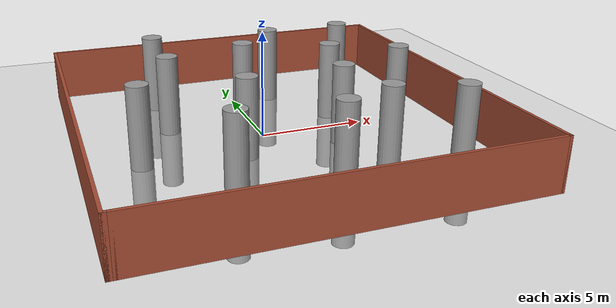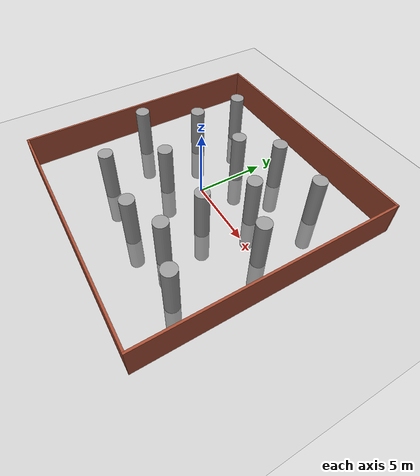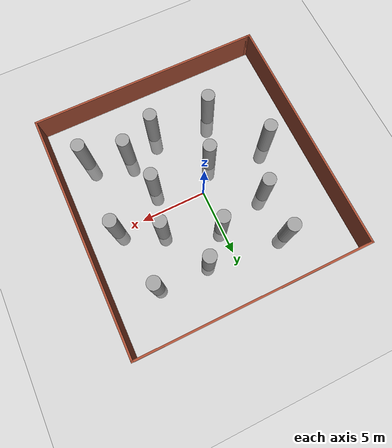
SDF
<sdf version="1.7">
 <world name="default">
  <light name="sun" type="directional">
   <pose>0 0 10 0 -0 0</pose>
   <diffuse>0.8 0.8 0.8 1</diffuse>
   <specular>0.2 0.2 0.2 1</specular>
   <attenuation>
    <range>1000</range>
    <constant>0.9</constant>
    <linear>0.01</linear>
    <quadratic>0.001</quadratic>
   </attenuation>
   <direction>-0.5 0.1 -0.9</direction>
   <spot><inner_angle>0</inner_angle><outer_angle>0</outer_angle><falloff>0</falloff></spot>
  </light>
  <model name="ground_plane">
   <static>1</static>
   <link name="link">
    <collision name="collision">
     <geometry><plane><normal>0 0 1</normal><size>100 100</size></plane></geometry>
     <surface>
      <contact><collide_bitmask>65535</collide_bitmask></contact>
      <friction><ode><mu>100</mu><mu2>50</mu2></ode></friction>
     </surface>
    </collision>
    <visual name="visual">
     <cast_shadows>0</cast_shadows>
     <geometry><plane><normal>0 0 1</normal><size>100 100</size></plane></geometry>
     <material>
      <script><uri>file://media/materials/scripts/gazebo.material</uri><name>Gazebo/Grey</name></script>
     </material>
    </visual>
   </link>
  </model>
  <gravity>0 0 -9.8</gravity>
  <magnetic_field>6e-06 2.3e-05 -4.2e-05</magnetic_field>
  <atmosphere type="adiabatic"/>
  <physics type="ode">
   <max_step_size>0.001</max_step_size>
   <real_time_factor>1</real_time_factor>
   <real_time_update_rate>1000</real_time_update_rate>
  </physics>
  <scene><ambient>0.4 0.4 0.4 1</ambient><background>0.7 0.7 0.7 1</background><shadows>1</shadows></scene>
  <spherical_coordinates>
   <surface_model>EARTH_WGS84</surface_model>
   <latitude_deg>0</latitude_deg>
   <longitude_deg>0</longitude_deg>
   <elevation>0</elevation>
   <heading_deg>0</heading_deg>
  </spherical_coordinates>
  <model name="wall">
   <pose>0.32648 -0.43812 0 0 -0 0</pose>
   <link name="Wall_0">
    <collision name="Wall_0_Collision">
     <geometry><box><size>17.75 0.15 2.5</size></box></geometry>
     <pose>0 0 1.25 0 -0 0</pose>
    </collision>
    <visual name="Wall_0_Visual">
     <pose>0 0 1.25 0 -0 0</pose>
     <geometry><box><size>17.75 0.15 2.5</size></box></geometry>
     <material>
      <script><uri>file://media/materials/scripts/gazebo.material</uri><name>Gazebo/Bricks</name></script>
      <ambient>1 1 1 1</ambient>
     </material>
     <meta><layer>0</layer></meta>
    </visual>
    <pose>0.125 -9.175 0 0 -0 0</pose>
   </link>
   <link name="Wall_1">
    <collision name="Wall_1_Collision">
     <geometry><box><size>18.5 0.15 2.5</size></box></geometry>
     <pose>0 0 1.25 0 -0 0</pose>
    </collision>
    <visual name="Wall_1_Visual">
     <pose>0 0 1.25 0 -0 0</pose>
     <geometry><box><size>18.5 0.15 2.5</size></box></geometry>
     <material>
      <script><uri>file://media/materials/scripts/gazebo.material</uri><name>Gazebo/Bricks</name></script>
      <ambient>1 1 1 1</ambient>
     </material>
     <meta><layer>0</layer></meta>
    </visual>
    <pose>8.925 -0 0 0 -0 1.5708</pose>
   </link>
   <link name="Wall_4">
    <collision name="Wall_4_Collision">
     <geometry><box><size>18 0.15 2.5</size></box></geometry>
     <pose>0 0 1.25 0 -0 0</pose>
    </collision>
    <visual name="Wall_4_Visual">
     <pose>0 0 1.25 0 -0 0</pose>
     <geometry><box><size>18 0.15 2.5</size></box></geometry>
     <material>
      <script><uri>file://media/materials/scripts/gazebo.material</uri><name>Gazebo/Bricks</name></script>
      <ambient>1 1 1 1</ambient>
     </material>
     <meta><layer>0</layer></meta>
    </visual>
    <pose>0 9.175 0 0 -0 3.14159</pose>
   </link>
   <link name="Wall_5">
    <collision name="Wall_5_Collision">
     <geometry><box><size>18.5 0.15 2.5</size></box></geometry>
     <pose>0 0 1.25 0 -0 0</pose>
    </collision>
    <visual name="Wall_5_Visual">
     <pose>0 0 1.25 0 -0 0</pose>
     <geometry><box><size>18.5 0.15 2.5</size></box></geometry>
     <material>
      <script><uri>file://media/materials/scripts/gazebo.material</uri><name>Gazebo/Bricks</name></script>
      <ambient>1 1 1 1</ambient>
     </material>
     <meta><layer>0</layer></meta>
    </visual>
    <pose>-8.925 -0 0 0 -0 -1.5708</pose>
   </link>
   <link name="Wall_7">
    <collision name="Wall_7_Collision">
     <geometry><box><size>0.4 0.15 2.5</size></box></geometry>
     <pose>0 0 1.25 0 -0 0</pose>
    </collision>
    <visual name="Wall_7_Visual">
     <pose>0 0 1.25 0 -0 0</pose>
     <geometry><box><size>0.4 0.15 2.5</size></box></geometry>
     <material>
      <script><uri>file://media/materials/scripts/gazebo.material</uri><name>Gazebo/Bricks</name></script>
      <ambient>1 1 1 1</ambient>
     </material>
     <meta><layer>0</layer></meta>
    </visual>
    <pose>-8.8 -9.175 0 0 -0 0</pose>
   </link>
   <static>1</static>
  </model>
  <model name="obstacle哦">
   <link name="link_0">
    <inertial>
     <mass>6.48915</mass>
     <inertia><ixx>23.1765</ixx><ixy>0</ixy><ixz>0</ixz><iyy>23.1765</iyy><iyz>0</iyz><izz>0.811144</izz></inertia>
    </inertial>
    <pose>-1.40053 -2.00877 0.5 0 -0 0</pose>
    <visual name="visual">
     <geometry><cylinder><radius>0.5</radius><length>6.48914</length></cylinder></geometry>
     <material>
      <lighting>1</lighting>
      <script><uri>file://media/materials/scripts/gazebo.material</uri><name>Gazebo/Grey</name></script>
      <shader type="pixel"/>
     </material>
    </visual>
    <collision name="collision">
     <geometry><cylinder><radius>0.5</radius><length>6.48914</length></cylinder></geometry>
     <surface>
      <friction>
       <ode><mu>1</mu><mu2>1</mu2><fdir1>0 0 0</fdir1><slip1>0</slip1><slip2>0</slip2></ode>
       <torsional>
        <coefficient>1</coefficient>
        <patch_radius>0</patch_radius>
        <surface_radius>0</surface_radius>
        <use_patch_radius>1</use_patch_radius>
        <ode><slip>0</slip></ode>
       </torsional>
      </friction>
      <bounce><restitution_coefficient>0</restitution_coefficient><threshold>1e+06</threshold></bounce>
      <contact>
       <collide_without_contact>0</collide_without_contact>
       <collide_without_contact_bitmask>1</collide_without_contact_bitmask>
       <collide_bitmask>1</collide_bitmask>
       <ode>
        <soft_cfm>0</soft_cfm>
        <soft_erp>0.2</soft_erp>
        <kp>1e+13</kp>
        <kd>1</kd>
        <max_vel>0.01</max_vel>
        <min_depth>0</min_depth>
       </ode>
       <bullet>
        <split_impulse>1</split_impulse>
        <split_impulse_penetration_threshold>-0.01</split_impulse_penetration_threshold>
        <soft_cfm>0</soft_cfm>
        <soft_erp>0.2</soft_erp>
        <kp>1e+13</kp>
        <kd>1</kd>
       </bullet>
      </contact>
     </surface>
    </collision>
   </link>
   <link name="link_0_clone">
    <inertial>
     <mass>6.48915</mass>
     <inertia><ixx>23.1765</ixx><ixy>0</ixy><ixz>0</ixz><iyy>23.1765</iyy><iyz>0</iyz><izz>0.811144</izz></inertia>
    </inertial>
    <pose>3.23362 -1.83558 0.5 0 -0 0</pose>
    <visual name="visual">
     <geometry><cylinder><radius>0.5</radius><length>6.48914</length></cylinder></geometry>
     <material>
      <lighting>1</lighting>
      <script><uri>file://media/materials/scripts/gazebo.material</uri><name>Gazebo/Grey</name></script>
      <shader type="pixel"/>
     </material>
    </visual>
    <collision name="collision">
     <geometry><cylinder><radius>0.5</radius><length>6.48914</length></cylinder></geometry>
     <surface>
      <friction>
       <ode><mu>1</mu><mu2>1</mu2><fdir1>0 0 0</fdir1><slip1>0</slip1><slip2>0</slip2></ode>
       <torsional>
        <coefficient>1</coefficient>
        <patch_radius>0</patch_radius>
        <surface_radius>0</surface_radius>
        <use_patch_radius>1</use_patch_radius>
        <ode><slip>0</slip></ode>
       </torsional>
      </friction>
      <bounce><restitution_coefficient>0</restitution_coefficient><threshold>1e+06</threshold></bounce>
      <contact>
       <collide_without_contact>0</collide_without_contact>
       <collide_without_contact_bitmask>1</collide_without_contact_bitmask>
       <collide_bitmask>1</collide_bitmask>
       <ode>
        <soft_cfm>0</soft_cfm>
        <soft_erp>0.2</soft_erp>
        <kp>1e+13</kp>
        <kd>1</kd>
        <max_vel>0.01</max_vel>
        <min_depth>0</min_depth>
       </ode>
       <bullet>
        <split_impulse>1</split_impulse>
        <split_impulse_penetration_threshold>-0.01</split_impulse_penetration_threshold>
        <soft_cfm>0</soft_cfm>
        <soft_erp>0.2</soft_erp>
        <kp>1e+13</kp>
        <kd>1</kd>
       </bullet>
      </contact>
     </surface>
    </collision>
   </link>
   <link name="link_0_clone_0">
    <inertial>
     <mass>6.48915</mass>
     <inertia><ixx>23.1765</ixx><ixy>0</ixy><ixz>0</ixz><iyy>23.1765</iyy><iyz>0</iyz><izz>0.811144</izz></inertia>
    </inertial>
    <pose>-3 -5.59698 0.5 0 -0 0</pose>
    <visual name="visual">
     <geometry><cylinder><radius>0.5</radius><length>6.48914</length></cylinder></geometry>
     <material>
      <lighting>1</lighting>
      <script><uri>file://media/materials/scripts/gazebo.material</uri><name>Gazebo/Grey</name></script>
      <shader type="pixel"/>
     </material>
    </visual>
    <collision name="collision">
     <geometry><cylinder><radius>0.5</radius><length>6.48914</length></cylinder></geometry>
     <surface>
      <friction>
       <ode><mu>1</mu><mu2>1</mu2><fdir1>0 0 0</fdir1><slip1>0</slip1><slip2>0</slip2></ode>
       <torsional>
        <coefficient>1</coefficient>
        <patch_radius>0</patch_radius>
        <surface_radius>0</surface_radius>
        <use_patch_radius>1</use_patch_radius>
        <ode><slip>0</slip></ode>
       </torsional>
      </friction>
      <bounce><restitution_coefficient>0</restitution_coefficient><threshold>1e+06</threshold></bounce>
      <contact>
       <collide_without_contact>0</collide_without_contact>
       <collide_without_contact_bitmask>1</collide_without_contact_bitmask>
       <collide_bitmask>1</collide_bitmask>
       <ode>
        <soft_cfm>0</soft_cfm>
        <soft_erp>0.2</soft_erp>
        <kp>1e+13</kp>
        <kd>1</kd>
        <max_vel>0.01</max_vel>
        <min_depth>0</min_depth>
       </ode>
       <bullet>
        <split_impulse>1</split_impulse>
        <split_impulse_penetration_threshold>-0.01</split_impulse_penetration_threshold>
        <soft_cfm>0</soft_cfm>
        <soft_erp>0.2</soft_erp>
        <kp>1e+13</kp>
        <kd>1</kd>
       </bullet>
      </contact>
     </surface>
    </collision>
   </link>
   <link name="link_0_clone_1">
    <inertial>
     <mass>6.48915</mass>
     <inertia><ixx>23.1765</ixx><ixy>0</ixy><ixz>0</ixz><iyy>23.1765</iyy><iyz>0</iyz><izz>0.811144</izz></inertia>
    </inertial>
    <pose>-6 -1.53349 0.5 0 -0 0</pose>
    <visual name="visual">
     <geometry><cylinder><radius>0.5</radius><length>6.48914</length></cylinder></geometry>
     <material>
      <lighting>1</lighting>
      <script><uri>file://media/materials/scripts/gazebo.material</uri><name>Gazebo/Grey</name></script>
      <shader type="pixel"/>
     </material>
    </visual>
    <collision name="collision">
     <geometry><cylinder><radius>0.5</radius><length>6.48914</length></cylinder></geometry>
     <surface>
      <friction>
       <ode><mu>1</mu><mu2>1</mu2><fdir1>0 0 0</fdir1><slip1>0</slip1><slip2>0</slip2></ode>
       <torsional>
        <coefficient>1</coefficient>
        <patch_radius>0</patch_radius>
        <surface_radius>0</surface_radius>
        <use_patch_radius>1</use_patch_radius>
        <ode><slip>0</slip></ode>
       </torsional>
      </friction>
      <bounce><restitution_coefficient>0</restitution_coefficient><threshold>1e+06</threshold></bounce>
      <contact>
       <collide_without_contact>0</collide_without_contact>
       <collide_without_contact_bitmask>1</collide_without_contact_bitmask>
       <collide_bitmask>1</collide_bitmask>
       <ode>
        <soft_cfm>0</soft_cfm>
        <soft_erp>0.2</soft_erp>
        <kp>1e+13</kp>
        <kd>1</kd>
        <max_vel>0.01</max_vel>
        <min_depth>0</min_depth>
       </ode>
       <bullet>
        <split_impulse>1</split_impulse>
        <split_impulse_penetration_threshold>-0.01</split_impulse_penetration_threshold>
        <soft_cfm>0</soft_cfm>
        <soft_erp>0.2</soft_erp>
        <kp>1e+13</kp>
        <kd>1</kd>
       </bullet>
      </contact>
     </surface>
    </collision>
   </link>
   <link name="link_0_clone_10">
    <inertial>
     <mass>6.48915</mass>
     <inertia><ixx>23.1765</ixx><ixy>0</ixy><ixz>0</ixz><iyy>23.1765</iyy><iyz>0</iyz><izz>0.811144</izz></inertia>
    </inertial>
    <pose>1e-06 3 0.5 0 -0 0</pose>
    <visual name="visual">
     <geometry><cylinder><radius>0.5</radius><length>6.48914</length></cylinder></geometry>
     <material>
      <lighting>1</lighting>
      <script><uri>file://media/materials/scripts/gazebo.material</uri><name>Gazebo/Grey</name></script>
      <shader type="pixel"/>
     </material>
    </visual>
    <collision name="collision">
     <geometry><cylinder><radius>0.5</radius><length>6.48914</length></cylinder></geometry>
     <surface>
      <friction>
       <ode><mu>1</mu><mu2>1</mu2><fdir1>0 0 0</fdir1><slip1>0</slip1><slip2>0</slip2></ode>
       <torsional>
        <coefficient>1</coefficient>
        <patch_radius>0</patch_radius>
        <surface_radius>0</surface_radius>
        <use_patch_radius>1</use_patch_radius>
        <ode><slip>0</slip></ode>
       </torsional>
      </friction>
      <bounce><restitution_coefficient>0</restitution_coefficient><threshold>1e+06</threshold></bounce>
      <contact>
       <collide_without_contact>0</collide_without_contact>
       <collide_without_contact_bitmask>1</collide_without_contact_bitmask>
       <collide_bitmask>1</collide_bitmask>
       <ode>
        <soft_cfm>0</soft_cfm>
        <soft_erp>0.2</soft_erp>
        <kp>1e+13</kp>
        <kd>1</kd>
        <max_vel>0.01</max_vel>
        <min_depth>0</min_depth>
       </ode>
       <bullet>
        <split_impulse>1</split_impulse>
        <split_impulse_penetration_threshold>-0.01</split_impulse_penetration_threshold>
        <soft_cfm>0</soft_cfm>
        <soft_erp>0.2</soft_erp>
        <kp>1e+13</kp>
        <kd>1</kd>
       </bullet>
      </contact>
     </surface>
    </collision>
   </link>
   <link name="link_0_clone_11">
    <inertial>
     <mass>6.48915</mass>
     <inertia><ixx>23.1765</ixx><ixy>0</ixy><ixz>0</ixz><iyy>23.1765</iyy><iyz>0</iyz><izz>0.811144</izz></inertia>
    </inertial>
    <pose>7 -1e-06 0.5 0 -0 0</pose>
    <visual name="visual">
     <geometry><cylinder><radius>0.5</radius><length>6.48914</length></cylinder></geometry>
     <material>
      <lighting>1</lighting>
      <script><uri>file://media/materials/scripts/gazebo.material</uri><name>Gazebo/Grey</name></script>
      <shader type="pixel"/>
     </material>
    </visual>
    <collision name="collision">
     <geometry><cylinder><radius>0.5</radius><length>6.48914</length></cylinder></geometry>
     <surface>
      <friction>
       <ode><mu>1</mu><mu2>1</mu2><fdir1>0 0 0</fdir1><slip1>0</slip1><slip2>0</slip2></ode>
       <torsional>
        <coefficient>1</coefficient>
        <patch_radius>0</patch_radius>
        <surface_radius>0</surface_radius>
        <use_patch_radius>1</use_patch_radius>
        <ode><slip>0</slip></ode>
       </torsional>
      </friction>
      <bounce><restitution_coefficient>0</restitution_coefficient><threshold>1e+06</threshold></bounce>
      <contact>
       <collide_without_contact>0</collide_without_contact>
       <collide_without_contact_bitmask>1</collide_without_contact_bitmask>
       <collide_bitmask>1</collide_bitmask>
       <ode>
        <soft_cfm>0</soft_cfm>
        <soft_erp>0.2</soft_erp>
        <kp>1e+13</kp>
        <kd>1</kd>
        <max_vel>0.01</max_vel>
        <min_depth>0</min_depth>
       </ode>
       <bullet>
        <split_impulse>1</split_impulse>
        <split_impulse_penetration_threshold>-0.01</split_impulse_penetration_threshold>
        <soft_cfm>0</soft_cfm>
        <soft_erp>0.2</soft_erp>
        <kp>1e+13</kp>
        <kd>1</kd>
       </bullet>
      </contact>
     </surface>
    </collision>
   </link>
   <link name="link_0_clone_2">
    <inertial>
     <mass>6.48915</mass>
     <inertia><ixx>23.1765</ixx><ixy>0</ixy><ixz>0</ixz><iyy>23.1765</iyy><iyz>0</iyz><izz>0.811144</izz></inertia>
    </inertial>
    <pose>-4 2 0.5 0 -0 0</pose>
    <visual name="visual">
     <geometry><cylinder><radius>0.5</radius><length>6.48914</length></cylinder></geometry>
     <material>
      <lighting>1</lighting>
      <script><uri>file://media/materials/scripts/gazebo.material</uri><name>Gazebo/Grey</name></script>
      <shader type="pixel"/>
     </material>
    </visual>
    <collision name="collision">
     <geometry><cylinder><radius>0.5</radius><length>6.48914</length></cylinder></geometry>
     <surface>
      <friction>
       <ode><mu>1</mu><mu2>1</mu2><fdir1>0 0 0</fdir1><slip1>0</slip1><slip2>0</slip2></ode>
       <torsional>
        <coefficient>1</coefficient>
        <patch_radius>0</patch_radius>
        <surface_radius>0</surface_radius>
        <use_patch_radius>1</use_patch_radius>
        <ode><slip>0</slip></ode>
       </torsional>
      </friction>
      <bounce><restitution_coefficient>0</restitution_coefficient><threshold>1e+06</threshold></bounce>
      <contact>
       <collide_without_contact>0</collide_without_contact>
       <collide_without_contact_bitmask>1</collide_without_contact_bitmask>
       <collide_bitmask>1</collide_bitmask>
       <ode>
        <soft_cfm>0</soft_cfm>
        <soft_erp>0.2</soft_erp>
        <kp>1e+13</kp>
        <kd>1</kd>
        <max_vel>0.01</max_vel>
        <min_depth>0</min_depth>
       </ode>
       <bullet>
        <split_impulse>1</split_impulse>
        <split_impulse_penetration_threshold>-0.01</split_impulse_penetration_threshold>
        <soft_cfm>0</soft_cfm>
        <soft_erp>0.2</soft_erp>
        <kp>1e+13</kp>
        <kd>1</kd>
       </bullet>
      </contact>
     </surface>
    </collision>
   </link>
   <link name="link_0_clone_3">
    <inertial>
     <mass>6.48915</mass>
     <inertia><ixx>23.1765</ixx><ixy>0</ixy><ixz>0</ixz><iyy>23.1765</iyy><iyz>0</iyz><izz>0.811144</izz></inertia>
    </inertial>
    <pose>4 1.47698 0.5 0 -0 0</pose>
    <visual name="visual">
     <geometry><cylinder><radius>0.5</radius><length>6.48914</length></cylinder></geometry>
     <material>
      <lighting>1</lighting>
      <script><uri>file://media/materials/scripts/gazebo.material</uri><name>Gazebo/Grey</name></script>
      <shader type="pixel"/>
     </material>
    </visual>
    <collision name="collision">
     <geometry><cylinder><radius>0.5</radius><length>6.48914</length></cylinder></geometry>
     <surface>
      <friction>
       <ode><mu>1</mu><mu2>1</mu2><fdir1>0 0 0</fdir1><slip1>0</slip1><slip2>0</slip2></ode>
       <torsional>
        <coefficient>1</coefficient>
        <patch_radius>0</patch_radius>
        <surface_radius>0</surface_radius>
        <use_patch_radius>1</use_patch_radius>
        <ode><slip>0</slip></ode>
       </torsional>
      </friction>
      <bounce><restitution_coefficient>0</restitution_coefficient><threshold>1e+06</threshold></bounce>
      <contact>
       <collide_without_contact>0</collide_without_contact>
       <collide_without_contact_bitmask>1</collide_without_contact_bitmask>
       <collide_bitmask>1</collide_bitmask>
       <ode>
        <soft_cfm>0</soft_cfm>
        <soft_erp>0.2</soft_erp>
        <kp>1e+13</kp>
        <kd>1</kd>
        <max_vel>0.01</max_vel>
        <min_depth>0</min_depth>
       </ode>
       <bullet>
        <split_impulse>1</split_impulse>
        <split_impulse_penetration_threshold>-0.01</split_impulse_penetration_threshold>
        <soft_cfm>0</soft_cfm>
        <soft_erp>0.2</soft_erp>
        <kp>1e+13</kp>
        <kd>1</kd>
       </bullet>
      </contact>
     </surface>
    </collision>
   </link>
   <link name="link_0_clone_4">
    <inertial>
     <mass>6.48915</mass>
     <inertia><ixx>23.1765</ixx><ixy>0</ixy><ixz>0</ixz><iyy>23.1765</iyy><iyz>0</iyz><izz>0.811144</izz></inertia>
    </inertial>
    <pose>1.47717 -6 0.5 0 -0 0</pose>
    <visual name="visual">
     <geometry><cylinder><radius>0.5</radius><length>6.48914</length></cylinder></geometry>
     <material>
      <lighting>1</lighting>
      <script><uri>file://media/materials/scripts/gazebo.material</uri><name>Gazebo/Grey</name></script>
      <shader type="pixel"/>
     </material>
    </visual>
    <collision name="collision">
     <geometry><cylinder><radius>0.5</radius><length>6.48914</length></cylinder></geometry>
     <surface>
      <friction>
       <ode><mu>1</mu><mu2>1</mu2><fdir1>0 0 0</fdir1><slip1>0</slip1><slip2>0</slip2></ode>
       <torsional>
        <coefficient>1</coefficient>
        <patch_radius>0</patch_radius>
        <surface_radius>0</surface_radius>
        <use_patch_radius>1</use_patch_radius>
        <ode><slip>0</slip></ode>
       </torsional>
      </friction>
      <bounce><restitution_coefficient>0</restitution_coefficient><threshold>1e+06</threshold></bounce>
      <contact>
       <collide_without_contact>0</collide_without_contact>
       <collide_without_contact_bitmask>1</collide_without_contact_bitmask>
       <collide_bitmask>1</collide_bitmask>
       <ode>
        <soft_cfm>0</soft_cfm>
        <soft_erp>0.2</soft_erp>
        <kp>1e+13</kp>
        <kd>1</kd>
        <max_vel>0.01</max_vel>
        <min_depth>0</min_depth>
       </ode>
       <bullet>
        <split_impulse>1</split_impulse>
        <split_impulse_penetration_threshold>-0.01</split_impulse_penetration_threshold>
        <soft_cfm>0</soft_cfm>
        <soft_erp>0.2</soft_erp>
        <kp>1e+13</kp>
        <kd>1</kd>
       </bullet>
      </contact>
     </surface>
    </collision>
   </link>
   <link name="link_0_clone_5">
    <inertial>
     <mass>6.48915</mass>
     <inertia><ixx>23.1765</ixx><ixy>0</ixy><ixz>0</ixz><iyy>23.1765</iyy><iyz>0</iyz><izz>0.811144</izz></inertia>
    </inertial>
    <pose>7 -6 0.5 0 -0 0</pose>
    <visual name="visual">
     <geometry><cylinder><radius>0.5</radius><length>6.48914</length></cylinder></geometry>
     <material>
      <lighting>1</lighting>
      <script><uri>file://media/materials/scripts/gazebo.material</uri><name>Gazebo/Grey</name></script>
      <shader type="pixel"/>
     </material>
    </visual>
    <collision name="collision">
     <geometry><cylinder><radius>0.5</radius><length>6.48914</length></cylinder></geometry>
     <surface>
      <friction>
       <ode><mu>1</mu><mu2>1</mu2><fdir1>0 0 0</fdir1><slip1>0</slip1><slip2>0</slip2></ode>
       <torsional>
        <coefficient>1</coefficient>
        <patch_radius>0</patch_radius>
        <surface_radius>0</surface_radius>
        <use_patch_radius>1</use_patch_radius>
        <ode><slip>0</slip></ode>
       </torsional>
      </friction>
      <bounce><restitution_coefficient>0</restitution_coefficient><threshold>1e+06</threshold></bounce>
      <contact>
       <collide_without_contact>0</collide_without_contact>
       <collide_without_contact_bitmask>1</collide_without_contact_bitmask>
       <collide_bitmask>1</collide_bitmask>
       <ode>
        <soft_cfm>0</soft_cfm>
        <soft_erp>0.2</soft_erp>
        <kp>1e+13</kp>
        <kd>1</kd>
        <max_vel>0.01</max_vel>
        <min_depth>0</min_depth>
       </ode>
       <bullet>
        <split_impulse>1</split_impulse>
        <split_impulse_penetration_threshold>-0.01</split_impulse_penetration_threshold>
        <soft_cfm>0</soft_cfm>
        <soft_erp>0.2</soft_erp>
        <kp>1e+13</kp>
        <kd>1</kd>
       </bullet>
      </contact>
     </surface>
    </collision>
   </link>
   <link name="link_0_clone_6">
    <inertial>
     <mass>6.48915</mass>
     <inertia><ixx>23.1765</ixx><ixy>0</ixy><ixz>0</ixz><iyy>23.1765</iyy><iyz>0</iyz><izz>0.811144</izz></inertia>
    </inertial>
    <pose>4 -5 0.5 0 -0 0</pose>
    <visual name="visual">
     <geometry><cylinder><radius>0.5</radius><length>6.48914</length></cylinder></geometry>
     <material>
      <lighting>1</lighting>
      <script><uri>file://media/materials/scripts/gazebo.material</uri><name>Gazebo/Grey</name></script>
      <shader type="pixel"/>
     </material>
    </visual>
    <collision name="collision">
     <geometry><cylinder><radius>0.5</radius><length>6.48914</length></cylinder></geometry>
     <surface>
      <friction>
       <ode><mu>1</mu><mu2>1</mu2><fdir1>0 0 0</fdir1><slip1>0</slip1><slip2>0</slip2></ode>
       <torsional>
        <coefficient>1</coefficient>
        <patch_radius>0</patch_radius>
        <surface_radius>0</surface_radius>
        <use_patch_radius>1</use_patch_radius>
        <ode><slip>0</slip></ode>
       </torsional>
      </friction>
      <bounce><restitution_coefficient>0</restitution_coefficient><threshold>1e+06</threshold></bounce>
      <contact>
       <collide_without_contact>0</collide_without_contact>
       <collide_without_contact_bitmask>1</collide_without_contact_bitmask>
       <collide_bitmask>1</collide_bitmask>
       <ode>
        <soft_cfm>0</soft_cfm>
        <soft_erp>0.2</soft_erp>
        <kp>1e+13</kp>
        <kd>1</kd>
        <max_vel>0.01</max_vel>
        <min_depth>0</min_depth>
       </ode>
       <bullet>
        <split_impulse>1</split_impulse>
        <split_impulse_penetration_threshold>-0.01</split_impulse_penetration_threshold>
        <soft_cfm>0</soft_cfm>
        <soft_erp>0.2</soft_erp>
        <kp>1e+13</kp>
        <kd>1</kd>
       </bullet>
      </contact>
     </surface>
    </collision>
   </link>
   <link name="link_0_clone_7">
    <inertial>
     <mass>6.48915</mass>
     <inertia><ixx>23.1765</ixx><ixy>0</ixy><ixz>0</ixz><iyy>23.1765</iyy><iyz>0</iyz><izz>0.811144</izz></inertia>
    </inertial>
    <pose>2 5 0.5 0 -0 0</pose>
    <visual name="visual">
     <geometry><cylinder><radius>0.5</radius><length>6.48914</length></cylinder></geometry>
     <material>
      <lighting>1</lighting>
      <script><uri>file://media/materials/scripts/gazebo.material</uri><name>Gazebo/Grey</name></script>
      <shader type="pixel"/>
     </material>
    </visual>
    <collision name="collision">
     <geometry><cylinder><radius>0.5</radius><length>6.48914</length></cylinder></geometry>
     <surface>
      <friction>
       <ode><mu>1</mu><mu2>1</mu2><fdir1>0 0 0</fdir1><slip1>0</slip1><slip2>0</slip2></ode>
       <torsional>
        <coefficient>1</coefficient>
        <patch_radius>0</patch_radius>
        <surface_radius>0</surface_radius>
        <use_patch_radius>1</use_patch_radius>
        <ode><slip>0</slip></ode>
       </torsional>
      </friction>
      <bounce><restitution_coefficient>0</restitution_coefficient><threshold>1e+06</threshold></bounce>
      <contact>
       <collide_without_contact>0</collide_without_contact>
       <collide_without_contact_bitmask>1</collide_without_contact_bitmask>
       <collide_bitmask>1</collide_bitmask>
       <ode>
        <soft_cfm>0</soft_cfm>
        <soft_erp>0.2</soft_erp>
        <kp>1e+13</kp>
        <kd>1</kd>
        <max_vel>0.01</max_vel>
        <min_depth>0</min_depth>
       </ode>
       <bullet>
        <split_impulse>1</split_impulse>
        <split_impulse_penetration_threshold>-0.01</split_impulse_penetration_threshold>
        <soft_cfm>0</soft_cfm>
        <soft_erp>0.2</soft_erp>
        <kp>1e+13</kp>
        <kd>1</kd>
       </bullet>
      </contact>
     </surface>
    </collision>
   </link>
   <link name="link_0_clone_8">
    <inertial>
     <mass>6.48915</mass>
     <inertia><ixx>23.1765</ixx><ixy>0</ixy><ixz>0</ixz><iyy>23.1765</iyy><iyz>0</iyz><izz>0.811144</izz></inertia>
    </inertial>
    <pose>6 5 0.5 0 -0 0</pose>
    <visual name="visual">
     <geometry><cylinder><radius>0.5</radius><length>6.48914</length></cylinder></geometry>
     <material>
      <lighting>1</lighting>
      <script><uri>file://media/materials/scripts/gazebo.material</uri><name>Gazebo/Grey</name></script>
      <shader type="pixel"/>
     </material>
    </visual>
    <collision name="collision">
     <geometry><cylinder><radius>0.5</radius><length>6.48914</length></cylinder></geometry>
     <surface>
      <friction>
       <ode><mu>1</mu><mu2>1</mu2><fdir1>0 0 0</fdir1><slip1>0</slip1><slip2>0</slip2></ode>
       <torsional>
        <coefficient>1</coefficient>
        <patch_radius>0</patch_radius>
        <surface_radius>0</surface_radius>
        <use_patch_radius>1</use_patch_radius>
        <ode><slip>0</slip></ode>
       </torsional>
      </friction>
      <bounce><restitution_coefficient>0</restitution_coefficient><threshold>1e+06</threshold></bounce>
      <contact>
       <collide_without_contact>0</collide_without_contact>
       <collide_without_contact_bitmask>1</collide_without_contact_bitmask>
       <collide_bitmask>1</collide_bitmask>
       <ode>
        <soft_cfm>0</soft_cfm>
        <soft_erp>0.2</soft_erp>
        <kp>1e+13</kp>
        <kd>1</kd>
        <max_vel>0.01</max_vel>
        <min_depth>0</min_depth>
       </ode>
       <bullet>
        <split_impulse>1</split_impulse>
        <split_impulse_penetration_threshold>-0.01</split_impulse_penetration_threshold>
        <soft_cfm>0</soft_cfm>
        <soft_erp>0.2</soft_erp>
        <kp>1e+13</kp>
        <kd>1</kd>
       </bullet>
      </contact>
     </surface>
    </collision>
   </link>
   <link name="link_0_clone_9">
    <inertial>
     <mass>6.48915</mass>
     <inertia><ixx>23.1765</ixx><ixy>0</ixy><ixz>0</ixz><iyy>23.1765</iyy><iyz>0</iyz><izz>0.811144</izz></inertia>
    </inertial>
    <pose>-4 5.50641 0.5 0 -0 0</pose>
    <visual name="visual">
     <geometry><cylinder><radius>0.5</radius><length>6.48914</length></cylinder></geometry>
     <material>
      <lighting>1</lighting>
      <script><uri>file://media/materials/scripts/gazebo.material</uri><name>Gazebo/Grey</name></script>
      <shader type="pixel"/>
     </material>
    </visual>
    <collision name="collision">
     <geometry><cylinder><radius>0.5</radius><length>6.48914</length></cylinder></geometry>
     <surface>
      <friction>
       <ode><mu>1</mu><mu2>1</mu2><fdir1>0 0 0</fdir1><slip1>0</slip1><slip2>0</slip2></ode>
       <torsional>
        <coefficient>1</coefficient>
        <patch_radius>0</patch_radius>
        <surface_radius>0</surface_radius>
        <use_patch_radius>1</use_patch_radius>
        <ode><slip>0</slip></ode>
       </torsional>
      </friction>
      <bounce><restitution_coefficient>0</restitution_coefficient><threshold>1e+06</threshold></bounce>
      <contact>
       <collide_without_contact>0</collide_without_contact>
       <collide_without_contact_bitmask>1</collide_without_contact_bitmask>
       <collide_bitmask>1</collide_bitmask>
       <ode>
        <soft_cfm>0</soft_cfm>
        <soft_erp>0.2</soft_erp>
        <kp>1e+13</kp>
        <kd>1</kd>
        <max_vel>0.01</max_vel>
        <min_depth>0</min_depth>
       </ode>
       <bullet>
        <split_impulse>1</split_impulse>
        <split_impulse_penetration_threshold>-0.01</split_impulse_penetration_threshold>
        <soft_cfm>0</soft_cfm>
        <soft_erp>0.2</soft_erp>
        <kp>1e+13</kp>
        <kd>1</kd>
       </bullet>
      </contact>
     </surface>
    </collision>
   </link>
   <static>0</static>
   <pose>-1e-06 1e-06 0 0 -0 0</pose>
  </model>
 </world>
</sdf>
